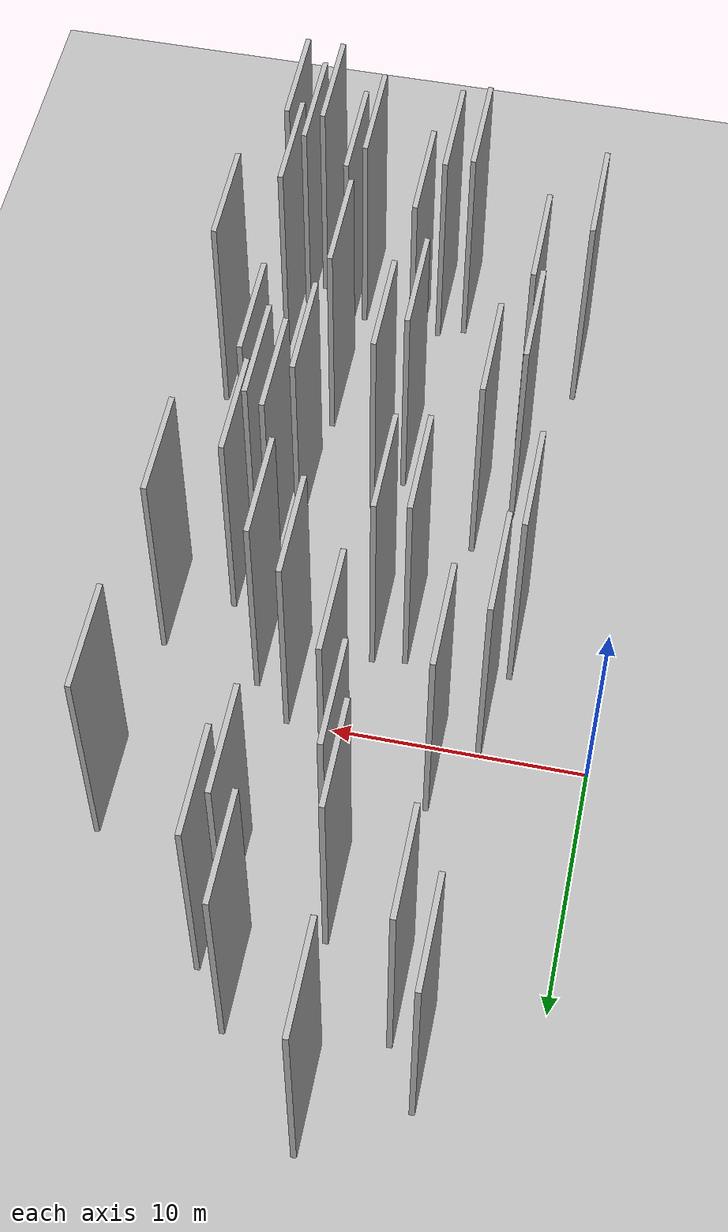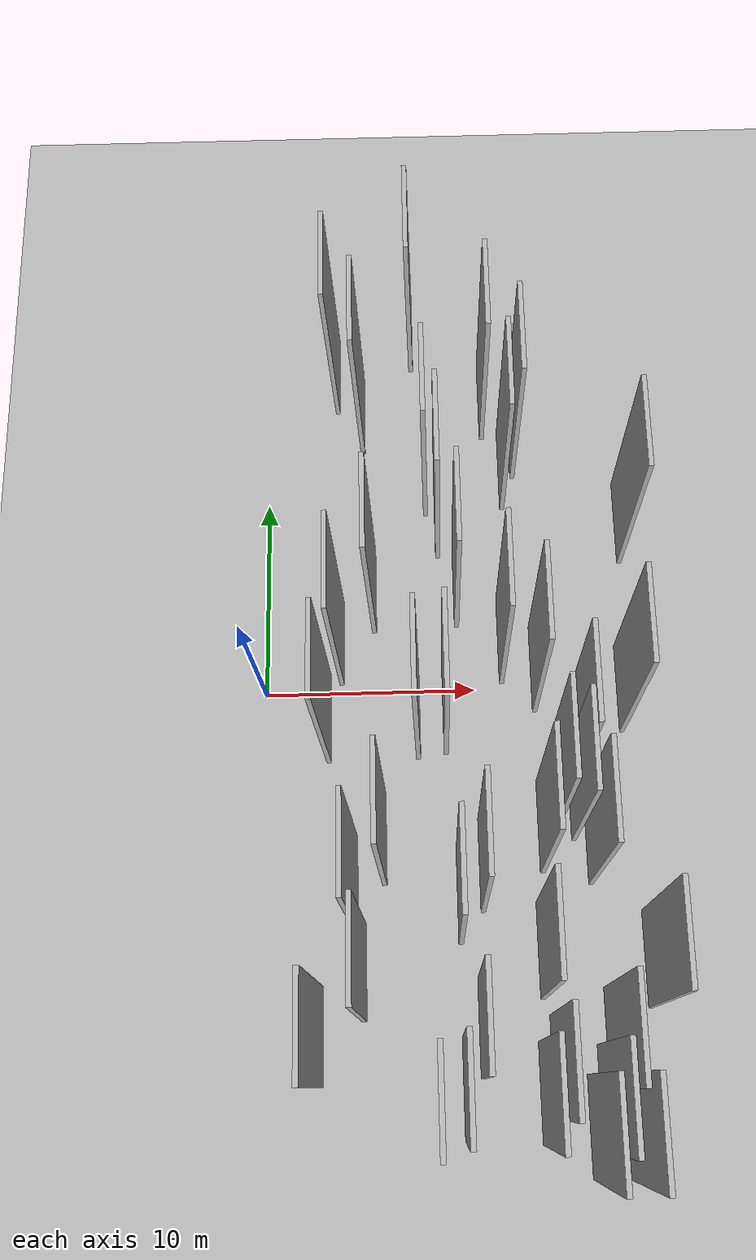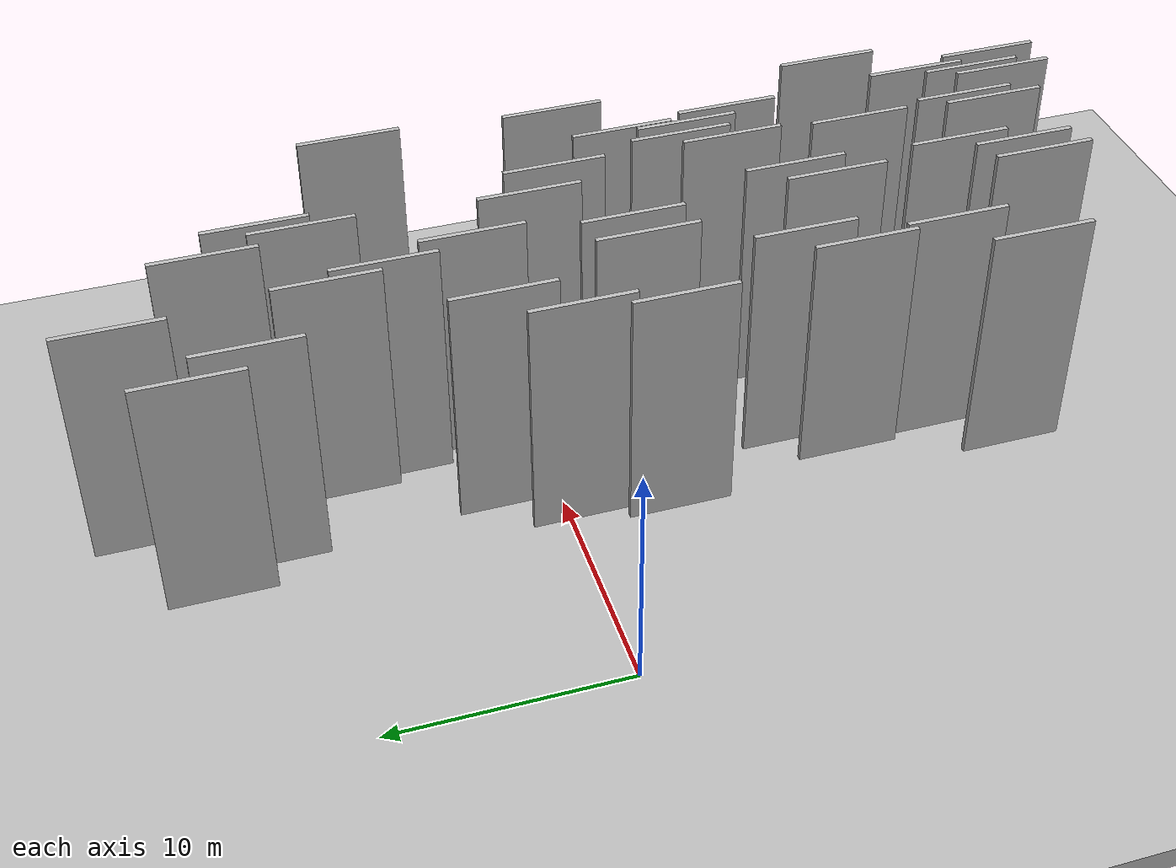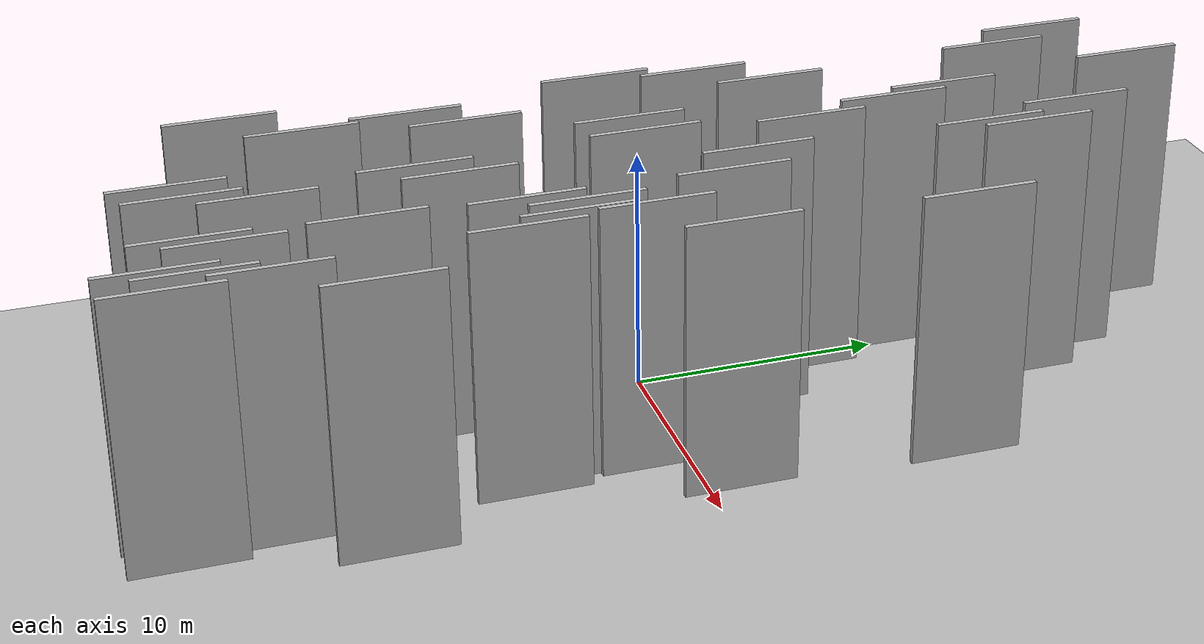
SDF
<?xml version="1.0" encoding="utf-8"?>

<sdf version="1.6">

   <world name="default">

      <gui fullscreen="0">

         <camera name="user_camera">

            <pose>-15 0 4.57585 0 0 0</pose>

            <view_controller>orbit</view_controller>

         </camera>

      </gui>

      <scene>

         <sky>

           <clouds>

             <speed>12</speed>

           </clouds>

         </sky>

         <ambient>0.4 0.4 0.4 1</ambient>

         <background>0.7 0.7 0.7 1</background>

         <shadows>1</shadows>

      </scene>

      <gravity>0 0 -9.8066</gravity>

      <magnetic_field>6e-06 2.3e-05 -4.2e-05</magnetic_field>

      <physics default="0" name="default_physics" type="ode">

         <ode>

            <solver>

               <type>quick</type>

               <iters>10</iters>

               <sor>1.0</sor>

               <use_dynamic_moi_rescaling>0</use_dynamic_moi_rescaling>

            </solver>

            <constraints>

               <cfm>0</cfm>

               <erp>0.2</erp>

               <contact_max_correcting_vel>100</contact_max_correcting_vel>

               <contact_surface_layer>0.001</contact_surface_layer>

            </constraints>

         </ode>

         <max_step_size>0.004</max_step_size>

         <real_time_factor>1</real_time_factor>

         <real_time_update_rate>250</real_time_update_rate>

      </physics>

      <light name="sun" type="directional">

         <cast_shadows>1</cast_shadows>

         <pose>0 0 10 0 0 0</pose>

         <diffuse>0.8 0.8 0.8 1</diffuse>

         <specular>0.2 0.2 0.2 1</specular>

         <attenuation>

            <range>1000</range>

            <constant>0.9</constant>

            <linear>0.01</linear>

            <quadratic>0.001</quadratic>

         </attenuation>

         <direction>-0.5 0.1 -0.9</direction>

      </light>

      <include>

         <name>ground_plane_1</name>

         <uri>model://HANNAS_ground_plane</uri>

         <pose>0 0 0  0 0 0</pose>

      </include>

      <include>

         <name>ground_plane_2</name>

         <uri>model://HANNAS_ground_plane</uri>

         <pose>100 0 0  0 0 0</pose>

      </include>

      <model name="HANNAS_wall_1">

         <static>1</static>

         <pose frame="">14.1114 -3.7937 5.0 0.000000 0.000000 1.570796</pose>

         <link name="link">

            <pose frame="">0 0 5.00 0 0 0</pose>

            <collision name="collision">

               <geometry>

                  <box>

                     <size>4.00 0.2 10.00</size>

                  </box>

               </geometry>

               <max_contacts>10</max_contacts>

               <surface>

                  <contact>

                     <ode/>

                  </contact>

                  <bounce/>

                  <friction>

                     <torsional>

                        <ode/>

                     </torsional>

                     <ode/>

                  </friction>

               </surface>

            </collision>

            <visual name="visual">

               <cast_shadows>0</cast_shadows>

               <geometry>

                  <box>

                     <size>4.00 0.2 10.00</size>

                  </box>

               </geometry>

               <material>

                  <script>

                     <uri>model://HANNAS_wall/materials/scripts</uri>

                     <uri>model://HANNAS_wall/materials/textures</uri>

                     <name>vrc/HANNAS_wall</name>

                  </script>

               </material>

            </visual>

            <self_collide>0</self_collide>

            <enable_wind>0</enable_wind>

            <kinematic>0</kinematic>

         </link>

      </model>

      <model name="HANNAS_wall_2">

         <static>1</static>

         <pose frame="">4.8286 -13.6177 5.0 0.000000 0.000000 1.570796</pose>

         <link name="link">

            <pose frame="">0 0 5.00 0 0 0</pose>

            <collision name="collision">

               <geometry>

                  <box>

                     <size>4.00 0.2 10.00</size>

                  </box>

               </geometry>

               <max_contacts>10</max_contacts>

               <surface>

                  <contact>

                     <ode/>

                  </contact>

                  <bounce/>

                  <friction>

                     <torsional>

                        <ode/>

                     </torsional>

                     <ode/>

                  </friction>

               </surface>

            </collision>

            <visual name="visual">

               <cast_shadows>0</cast_shadows>

               <geometry>

                  <box>

                     <size>4.00 0.2 10.00</size>

                  </box>

               </geometry>

               <material>

                  <script>

                     <uri>model://HANNAS_wall/materials/scripts</uri>

                     <uri>model://HANNAS_wall/materials/textures</uri>

                     <name>vrc/HANNAS_wall</name>

                  </script>

               </material>

            </visual>

            <self_collide>0</self_collide>

            <enable_wind>0</enable_wind>

            <kinematic>0</kinematic>

         </link>

      </model>

      <model name="HANNAS_wall_3">

         <static>1</static>

         <pose frame="">14.4330 -18.7778 5.0 0.000000 0.000000 1.570796</pose>

         <link name="link">

            <pose frame="">0 0 5.00 0 0 0</pose>

            <collision name="collision">

               <geometry>

                  <box>

                     <size>4.00 0.2 10.00</size>

                  </box>

               </geometry>

               <max_contacts>10</max_contacts>

               <surface>

                  <contact>

                     <ode/>

                  </contact>

                  <bounce/>

                  <friction>

                     <torsional>

                        <ode/>

                     </torsional>

                     <ode/>

                  </friction>

               </surface>

            </collision>

            <visual name="visual">

               <cast_shadows>0</cast_shadows>

               <geometry>

                  <box>

                     <size>4.00 0.2 10.00</size>

                  </box>

               </geometry>

               <material>

                  <script>

                     <uri>model://HANNAS_wall/materials/scripts</uri>

                     <uri>model://HANNAS_wall/materials/textures</uri>

                     <name>vrc/HANNAS_wall</name>

                  </script>

               </material>

            </visual>

            <self_collide>0</self_collide>

            <enable_wind>0</enable_wind>

            <kinematic>0</kinematic>

         </link>

      </model>

      <model name="HANNAS_wall_4">

         <static>1</static>

         <pose frame="">10.6159 12.9399 5.0 0.000000 0.000000 1.570796</pose>

         <link name="link">

            <pose frame="">0 0 5.00 0 0 0</pose>

            <collision name="collision">

               <geometry>

                  <box>

                     <size>4.00 0.2 10.00</size>

                  </box>

               </geometry>

               <max_contacts>10</max_contacts>

               <surface>

                  <contact>

                     <ode/>

                  </contact>

                  <bounce/>

                  <friction>

                     <torsional>

                        <ode/>

                     </torsional>

                     <ode/>

                  </friction>

               </surface>

            </collision>

            <visual name="visual">

               <cast_shadows>0</cast_shadows>

               <geometry>

                  <box>

                     <size>4.00 0.2 10.00</size>

                  </box>

               </geometry>

               <material>

                  <script>

                     <uri>model://HANNAS_wall/materials/scripts</uri>

                     <uri>model://HANNAS_wall/materials/textures</uri>

                     <name>vrc/HANNAS_wall</name>

                  </script>

               </material>

            </visual>

            <self_collide>0</self_collide>

            <enable_wind>0</enable_wind>

            <kinematic>0</kinematic>

         </link>

      </model>

      <model name="HANNAS_wall_5">

         <static>1</static>

         <pose frame="">16.2776 -1.5893 5.0 0.000000 0.000000 1.570796</pose>

         <link name="link">

            <pose frame="">0 0 5.00 0 0 0</pose>

            <collision name="collision">

               <geometry>

                  <box>

                     <size>4.00 0.2 10.00</size>

                  </box>

               </geometry>

               <max_contacts>10</max_contacts>

               <surface>

                  <contact>

                     <ode/>

                  </contact>

                  <bounce/>

                  <friction>

                     <torsional>

                        <ode/>

                     </torsional>

                     <ode/>

                  </friction>

               </surface>

            </collision>

            <visual name="visual">

               <cast_shadows>0</cast_shadows>

               <geometry>

                  <box>

                     <size>4.00 0.2 10.00</size>

                  </box>

               </geometry>

               <material>

                  <script>

                     <uri>model://HANNAS_wall/materials/scripts</uri>

                     <uri>model://HANNAS_wall/materials/textures</uri>

                     <name>vrc/HANNAS_wall</name>

                  </script>

               </material>

            </visual>

            <self_collide>0</self_collide>

            <enable_wind>0</enable_wind>

            <kinematic>0</kinematic>

         </link>

      </model>

      <model name="HANNAS_wall_6">

         <static>1</static>

         <pose frame="">3.9730 0.8960 5.0 0.000000 0.000000 1.570796</pose>

         <link name="link">

            <pose frame="">0 0 5.00 0 0 0</pose>

            <collision name="collision">

               <geometry>

                  <box>

                     <size>4.00 0.2 10.00</size>

                  </box>

               </geometry>

               <max_contacts>10</max_contacts>

               <surface>

                  <contact>

                     <ode/>

                  </contact>

                  <bounce/>

                  <friction>

                     <torsional>

                        <ode/>

                     </torsional>

                     <ode/>

                  </friction>

               </surface>

            </collision>

            <visual name="visual">

               <cast_shadows>0</cast_shadows>

               <geometry>

                  <box>

                     <size>4.00 0.2 10.00</size>

                  </box>

               </geometry>

               <material>

                  <script>

                     <uri>model://HANNAS_wall/materials/scripts</uri>

                     <uri>model://HANNAS_wall/materials/textures</uri>

                     <name>vrc/HANNAS_wall</name>

                  </script>

               </material>

            </visual>

            <self_collide>0</self_collide>

            <enable_wind>0</enable_wind>

            <kinematic>0</kinematic>

         </link>

      </model>

      <model name="HANNAS_wall_7">

         <static>1</static>

         <pose frame="">5.7420 -8.0515 5.0 0.000000 0.000000 1.570796</pose>

         <link name="link">

            <pose frame="">0 0 5.00 0 0 0</pose>

            <collision name="collision">

               <geometry>

                  <box>

                     <size>4.00 0.2 10.00</size>

                  </box>

               </geometry>

               <max_contacts>10</max_contacts>

               <surface>

                  <contact>

                     <ode/>

                  </contact>

                  <bounce/>

                  <friction>

                     <torsional>

                        <ode/>

                     </torsional>

                     <ode/>

                  </friction>

               </surface>

            </collision>

            <visual name="visual">

               <cast_shadows>0</cast_shadows>

               <geometry>

                  <box>

                     <size>4.00 0.2 10.00</size>

                  </box>

               </geometry>

               <material>

                  <script>

                     <uri>model://HANNAS_wall/materials/scripts</uri>

                     <uri>model://HANNAS_wall/materials/textures</uri>

                     <name>vrc/HANNAS_wall</name>

                  </script>

               </material>

            </visual>

            <self_collide>0</self_collide>

            <enable_wind>0</enable_wind>

            <kinematic>0</kinematic>

         </link>

      </model>

      <model name="HANNAS_wall_8">

         <static>1</static>

         <pose frame="">16.6600 -13.3874 5.0 0.000000 0.000000 1.570796</pose>

         <link name="link">

            <pose frame="">0 0 5.00 0 0 0</pose>

            <collision name="collision">

               <geometry>

                  <box>

                     <size>4.00 0.2 10.00</size>

                  </box>

               </geometry>

               <max_contacts>10</max_contacts>

               <surface>

                  <contact>

                     <ode/>

                  </contact>

                  <bounce/>

                  <friction>

                     <torsional>

                        <ode/>

                     </torsional>

                     <ode/>

                  </friction>

               </surface>

            </collision>

            <visual name="visual">

               <cast_shadows>0</cast_shadows>

               <geometry>

                  <box>

                     <size>4.00 0.2 10.00</size>

                  </box>

               </geometry>

               <material>

                  <script>

                     <uri>model://HANNAS_wall/materials/scripts</uri>

                     <uri>model://HANNAS_wall/materials/textures</uri>

                     <name>vrc/HANNAS_wall</name>

                  </script>

               </material>

            </visual>

            <self_collide>0</self_collide>

            <enable_wind>0</enable_wind>

            <kinematic>0</kinematic>

         </link>

      </model>

      <model name="HANNAS_wall_9">

         <static>1</static>

         <pose frame="">13.8829 -6.3449 5.0 0.000000 0.000000 1.570796</pose>

         <link name="link">

            <pose frame="">0 0 5.00 0 0 0</pose>

            <collision name="collision">

               <geometry>

                  <box>

                     <size>4.00 0.2 10.00</size>

                  </box>

               </geometry>

               <max_contacts>10</max_contacts>

               <surface>

                  <contact>

                     <ode/>

                  </contact>

                  <bounce/>

                  <friction>

                     <torsional>

                        <ode/>

                     </torsional>

                     <ode/>

                  </friction>

               </surface>

            </collision>

            <visual name="visual">

               <cast_shadows>0</cast_shadows>

               <geometry>

                  <box>

                     <size>4.00 0.2 10.00</size>

                  </box>

               </geometry>

               <material>

                  <script>

                     <uri>model://HANNAS_wall/materials/scripts</uri>

                     <uri>model://HANNAS_wall/materials/textures</uri>

                     <name>vrc/HANNAS_wall</name>

                  </script>

               </material>

            </visual>

            <self_collide>0</self_collide>

            <enable_wind>0</enable_wind>

            <kinematic>0</kinematic>

         </link>

      </model>

      <model name="HANNAS_wall_10">

         <static>1</static>

         <pose frame="">9.6374 -15.9905 5.0 0.000000 0.000000 1.570796</pose>

         <link name="link">

            <pose frame="">0 0 5.00 0 0 0</pose>

            <collision name="collision">

               <geometry>

                  <box>

                     <size>4.00 0.2 10.00</size>

                  </box>

               </geometry>

               <max_contacts>10</max_contacts>

               <surface>

                  <contact>

                     <ode/>

                  </contact>

                  <bounce/>

                  <friction>

                     <torsional>

                        <ode/>

                     </torsional>

                     <ode/>

                  </friction>

               </surface>

            </collision>

            <visual name="visual">

               <cast_shadows>0</cast_shadows>

               <geometry>

                  <box>

                     <size>4.00 0.2 10.00</size>

                  </box>

               </geometry>

               <material>

                  <script>

                     <uri>model://HANNAS_wall/materials/scripts</uri>

                     <uri>model://HANNAS_wall/materials/textures</uri>

                     <name>vrc/HANNAS_wall</name>

                  </script>

               </material>

            </visual>

            <self_collide>0</self_collide>

            <enable_wind>0</enable_wind>

            <kinematic>0</kinematic>

         </link>

      </model>

      <model name="HANNAS_wall_11">

         <static>1</static>

         <pose frame="">3.8425 14.4688 5.0 0.000000 0.000000 1.570796</pose>

         <link name="link">

            <pose frame="">0 0 5.00 0 0 0</pose>

            <collision name="collision">

               <geometry>

                  <box>

                     <size>4.00 0.2 10.00</size>

                  </box>

               </geometry>

               <max_contacts>10</max_contacts>

               <surface>

                  <contact>

                     <ode/>

                  </contact>

                  <bounce/>

                  <friction>

                     <torsional>

                        <ode/>

                     </torsional>

                     <ode/>

                  </friction>

               </surface>

            </collision>

            <visual name="visual">

               <cast_shadows>0</cast_shadows>

               <geometry>

                  <box>

                     <size>4.00 0.2 10.00</size>

                  </box>

               </geometry>

               <material>

                  <script>

                     <uri>model://HANNAS_wall/materials/scripts</uri>

                     <uri>model://HANNAS_wall/materials/textures</uri>

                     <name>vrc/HANNAS_wall</name>

                  </script>

               </material>

            </visual>

            <self_collide>0</self_collide>

            <enable_wind>0</enable_wind>

            <kinematic>0</kinematic>

         </link>

      </model>

      <model name="HANNAS_wall_12">

         <static>1</static>

         <pose frame="">8.5138 -2.3980 5.0 0.000000 0.000000 1.570796</pose>

         <link name="link">

            <pose frame="">0 0 5.00 0 0 0</pose>

            <collision name="collision">

               <geometry>

                  <box>

                     <size>4.00 0.2 10.00</size>

                  </box>

               </geometry>

               <max_contacts>10</max_contacts>

               <surface>

                  <contact>

                     <ode/>

                  </contact>

                  <bounce/>

                  <friction>

                     <torsional>

                        <ode/>

                     </torsional>

                     <ode/>

                  </friction>

               </surface>

            </collision>

            <visual name="visual">

               <cast_shadows>0</cast_shadows>

               <geometry>

                  <box>

                     <size>4.00 0.2 10.00</size>

                  </box>

               </geometry>

               <material>

                  <script>

                     <uri>model://HANNAS_wall/materials/scripts</uri>

                     <uri>model://HANNAS_wall/materials/textures</uri>

                     <name>vrc/HANNAS_wall</name>

                  </script>

               </material>

            </visual>

            <self_collide>0</self_collide>

            <enable_wind>0</enable_wind>

            <kinematic>0</kinematic>

         </link>

      </model>

      <model name="HANNAS_wall_13">

         <static>1</static>

         <pose frame="">7.9102 -18.7060 5.0 0.000000 0.000000 1.570796</pose>

         <link name="link">

            <pose frame="">0 0 5.00 0 0 0</pose>

            <collision name="collision">

               <geometry>

                  <box>

                     <size>4.00 0.2 10.00</size>

                  </box>

               </geometry>

               <max_contacts>10</max_contacts>

               <surface>

                  <contact>

                     <ode/>

                  </contact>

                  <bounce/>

                  <friction>

                     <torsional>

                        <ode/>

                     </torsional>

                     <ode/>

                  </friction>

               </surface>

            </collision>

            <visual name="visual">

               <cast_shadows>0</cast_shadows>

               <geometry>

                  <box>

                     <size>4.00 0.2 10.00</size>

                  </box>

               </geometry>

               <material>

                  <script>

                     <uri>model://HANNAS_wall/materials/scripts</uri>

                     <uri>model://HANNAS_wall/materials/textures</uri>

                     <name>vrc/HANNAS_wall</name>

                  </script>

               </material>

            </visual>

            <self_collide>0</self_collide>

            <enable_wind>0</enable_wind>

            <kinematic>0</kinematic>

         </link>

      </model>

      <model name="HANNAS_wall_14">

         <static>1</static>

         <pose frame="">13.1579 -5.8604 5.0 0.000000 0.000000 1.570796</pose>

         <link name="link">

            <pose frame="">0 0 5.00 0 0 0</pose>

            <collision name="collision">

               <geometry>

                  <box>

                     <size>4.00 0.2 10.00</size>

                  </box>

               </geometry>

               <max_contacts>10</max_contacts>

               <surface>

                  <contact>

                     <ode/>

                  </contact>

                  <bounce/>

                  <friction>

                     <torsional>

                        <ode/>

                     </torsional>

                     <ode/>

                  </friction>

               </surface>

            </collision>

            <visual name="visual">

               <cast_shadows>0</cast_shadows>

               <geometry>

                  <box>

                     <size>4.00 0.2 10.00</size>

                  </box>

               </geometry>

               <material>

                  <script>

                     <uri>model://HANNAS_wall/materials/scripts</uri>

                     <uri>model://HANNAS_wall/materials/textures</uri>

                     <name>vrc/HANNAS_wall</name>

                  </script>

               </material>

            </visual>

            <self_collide>0</self_collide>

            <enable_wind>0</enable_wind>

            <kinematic>0</kinematic>

         </link>

      </model>

      <model name="HANNAS_wall_15">

         <static>1</static>

         <pose frame="">11.9748 10.8636 5.0 0.000000 0.000000 1.570796</pose>

         <link name="link">

            <pose frame="">0 0 5.00 0 0 0</pose>

            <collision name="collision">

               <geometry>

                  <box>

                     <size>4.00 0.2 10.00</size>

                  </box>

               </geometry>

               <max_contacts>10</max_contacts>

               <surface>

                  <contact>

                     <ode/>

                  </contact>

                  <bounce/>

                  <friction>

                     <torsional>

                        <ode/>

                     </torsional>

                     <ode/>

                  </friction>

               </surface>

            </collision>

            <visual name="visual">

               <cast_shadows>0</cast_shadows>

               <geometry>

                  <box>

                     <size>4.00 0.2 10.00</size>

                  </box>

               </geometry>

               <material>

                  <script>

                     <uri>model://HANNAS_wall/materials/scripts</uri>

                     <uri>model://HANNAS_wall/materials/textures</uri>

                     <name>vrc/HANNAS_wall</name>

                  </script>

               </material>

            </visual>

            <self_collide>0</self_collide>

            <enable_wind>0</enable_wind>

            <kinematic>0</kinematic>

         </link>

      </model>

      <model name="HANNAS_wall_16">

         <static>1</static>

         <pose frame="">12.4791 -0.5651 5.0 0.000000 0.000000 1.570796</pose>

         <link name="link">

            <pose frame="">0 0 5.00 0 0 0</pose>

            <collision name="collision">

               <geometry>

                  <box>

                     <size>4.00 0.2 10.00</size>

                  </box>

               </geometry>

               <max_contacts>10</max_contacts>

               <surface>

                  <contact>

                     <ode/>

                  </contact>

                  <bounce/>

                  <friction>

                     <torsional>

                        <ode/>

                     </torsional>

                     <ode/>

                  </friction>

               </surface>

            </collision>

            <visual name="visual">

               <cast_shadows>0</cast_shadows>

               <geometry>

                  <box>

                     <size>4.00 0.2 10.00</size>

                  </box>

               </geometry>

               <material>

                  <script>

                     <uri>model://HANNAS_wall/materials/scripts</uri>

                     <uri>model://HANNAS_wall/materials/textures</uri>

                     <name>vrc/HANNAS_wall</name>

                  </script>

               </material>

            </visual>

            <self_collide>0</self_collide>

            <enable_wind>0</enable_wind>

            <kinematic>0</kinematic>

         </link>

      </model>

      <model name="HANNAS_wall_17">

         <static>1</static>

         <pose frame="">3.3967 -2.6597 5.0 0.000000 0.000000 1.570796</pose>

         <link name="link">

            <pose frame="">0 0 5.00 0 0 0</pose>

            <collision name="collision">

               <geometry>

                  <box>

                     <size>4.00 0.2 10.00</size>

                  </box>

               </geometry>

               <max_contacts>10</max_contacts>

               <surface>

                  <contact>

                     <ode/>

                  </contact>

                  <bounce/>

                  <friction>

                     <torsional>

                        <ode/>

                     </torsional>

                     <ode/>

                  </friction>

               </surface>

            </collision>

            <visual name="visual">

               <cast_shadows>0</cast_shadows>

               <geometry>

                  <box>

                     <size>4.00 0.2 10.00</size>

                  </box>

               </geometry>

               <material>

                  <script>

                     <uri>model://HANNAS_wall/materials/scripts</uri>

                     <uri>model://HANNAS_wall/materials/textures</uri>

                     <name>vrc/HANNAS_wall</name>

                  </script>

               </material>

            </visual>

            <self_collide>0</self_collide>

            <enable_wind>0</enable_wind>

            <kinematic>0</kinematic>

         </link>

      </model>

      <model name="HANNAS_wall_18">

         <static>1</static>

         <pose frame="">5.0087 12.3215 5.0 0.000000 0.000000 1.570796</pose>

         <link name="link">

            <pose frame="">0 0 5.00 0 0 0</pose>

            <collision name="collision">

               <geometry>

                  <box>

                     <size>4.00 0.2 10.00</size>

                  </box>

               </geometry>

               <max_contacts>10</max_contacts>

               <surface>

                  <contact>

                     <ode/>

                  </contact>

                  <bounce/>

                  <friction>

                     <torsional>

                        <ode/>

                     </torsional>

                     <ode/>

                  </friction>

               </surface>

            </collision>

            <visual name="visual">

               <cast_shadows>0</cast_shadows>

               <geometry>

                  <box>

                     <size>4.00 0.2 10.00</size>

                  </box>

               </geometry>

               <material>

                  <script>

                     <uri>model://HANNAS_wall/materials/scripts</uri>

                     <uri>model://HANNAS_wall/materials/textures</uri>

                     <name>vrc/HANNAS_wall</name>

                  </script>

               </material>

            </visual>

            <self_collide>0</self_collide>

            <enable_wind>0</enable_wind>

            <kinematic>0</kinematic>

         </link>

      </model>

      <model name="HANNAS_wall_19">

         <static>1</static>

         <pose frame="">3.0246 -16.1511 5.0 0.000000 0.000000 1.570796</pose>

         <link name="link">

            <pose frame="">0 0 5.00 0 0 0</pose>

            <collision name="collision">

               <geometry>

                  <box>

                     <size>4.00 0.2 10.00</size>

                  </box>

               </geometry>

               <max_contacts>10</max_contacts>

               <surface>

                  <contact>

                     <ode/>

                  </contact>

                  <bounce/>

                  <friction>

                     <torsional>

                        <ode/>

                     </torsional>

                     <ode/>

                  </friction>

               </surface>

            </collision>

            <visual name="visual">

               <cast_shadows>0</cast_shadows>

               <geometry>

                  <box>

                     <size>4.00 0.2 10.00</size>

                  </box>

               </geometry>

               <material>

                  <script>

                     <uri>model://HANNAS_wall/materials/scripts</uri>

                     <uri>model://HANNAS_wall/materials/textures</uri>

                     <name>vrc/HANNAS_wall</name>

                  </script>

               </material>

            </visual>

            <self_collide>0</self_collide>

            <enable_wind>0</enable_wind>

            <kinematic>0</kinematic>

         </link>

      </model>

      <model name="HANNAS_wall_20">

         <static>1</static>

         <pose frame="">8.9035 -10.5954 5.0 0.000000 0.000000 1.570796</pose>

         <link name="link">

            <pose frame="">0 0 5.00 0 0 0</pose>

            <collision name="collision">

               <geometry>

                  <box>

                     <size>4.00 0.2 10.00</size>

                  </box>

               </geometry>

               <max_contacts>10</max_contacts>

               <surface>

                  <contact>

                     <ode/>

                  </contact>

                  <bounce/>

                  <friction>

                     <torsional>

                        <ode/>

                     </torsional>

                     <ode/>

                  </friction>

               </surface>

            </collision>

            <visual name="visual">

               <cast_shadows>0</cast_shadows>

               <geometry>

                  <box>

                     <size>4.00 0.2 10.00</size>

                  </box>

               </geometry>

               <material>

                  <script>

                     <uri>model://HANNAS_wall/materials/scripts</uri>

                     <uri>model://HANNAS_wall/materials/textures</uri>

                     <name>vrc/HANNAS_wall</name>

                  </script>

               </material>

            </visual>

            <self_collide>0</self_collide>

            <enable_wind>0</enable_wind>

            <kinematic>0</kinematic>

         </link>

      </model>

      <model name="HANNAS_wall_21">

         <static>1</static>

         <pose frame="">9.8785 -9.2996 5.0 0.000000 0.000000 1.570796</pose>

         <link name="link">

            <pose frame="">0 0 5.00 0 0 0</pose>

            <collision name="collision">

               <geometry>

                  <box>

                     <size>4.00 0.2 10.00</size>

                  </box>

               </geometry>

               <max_contacts>10</max_contacts>

               <surface>

                  <contact>

                     <ode/>

                  </contact>

                  <bounce/>

                  <friction>

                     <torsional>

                        <ode/>

                     </torsional>

                     <ode/>

                  </friction>

               </surface>

            </collision>

            <visual name="visual">

               <cast_shadows>0</cast_shadows>

               <geometry>

                  <box>

                     <size>4.00 0.2 10.00</size>

                  </box>

               </geometry>

               <material>

                  <script>

                     <uri>model://HANNAS_wall/materials/scripts</uri>

                     <uri>model://HANNAS_wall/materials/textures</uri>

                     <name>vrc/HANNAS_wall</name>

                  </script>

               </material>

            </visual>

            <self_collide>0</self_collide>

            <enable_wind>0</enable_wind>

            <kinematic>0</kinematic>

         </link>

      </model>

      <model name="HANNAS_wall_22">

         <static>1</static>

         <pose frame="">11.0679 0.8018 5.0 0.000000 0.000000 1.570796</pose>

         <link name="link">

            <pose frame="">0 0 5.00 0 0 0</pose>

            <collision name="collision">

               <geometry>

                  <box>

                     <size>4.00 0.2 10.00</size>

                  </box>

               </geometry>

               <max_contacts>10</max_contacts>

               <surface>

                  <contact>

                     <ode/>

                  </contact>

                  <bounce/>

                  <friction>

                     <torsional>

                        <ode/>

                     </torsional>

                     <ode/>

                  </friction>

               </surface>

            </collision>

            <visual name="visual">

               <cast_shadows>0</cast_shadows>

               <geometry>

                  <box>

                     <size>4.00 0.2 10.00</size>

                  </box>

               </geometry>

               <material>

                  <script>

                     <uri>model://HANNAS_wall/materials/scripts</uri>

                     <uri>model://HANNAS_wall/materials/textures</uri>

                     <name>vrc/HANNAS_wall</name>

                  </script>

               </material>

            </visual>

            <self_collide>0</self_collide>

            <enable_wind>0</enable_wind>

            <kinematic>0</kinematic>

         </link>

      </model>

      <model name="HANNAS_wall_23">

         <static>1</static>

         <pose frame="">16.7042 6.4296 5.0 0.000000 0.000000 1.570796</pose>

         <link name="link">

            <pose frame="">0 0 5.00 0 0 0</pose>

            <collision name="collision">

               <geometry>

                  <box>

                     <size>4.00 0.2 10.00</size>

                  </box>

               </geometry>

               <max_contacts>10</max_contacts>

               <surface>

                  <contact>

                     <ode/>

                  </contact>

                  <bounce/>

                  <friction>

                     <torsional>

                        <ode/>

                     </torsional>

                     <ode/>

                  </friction>

               </surface>

            </collision>

            <visual name="visual">

               <cast_shadows>0</cast_shadows>

               <geometry>

                  <box>

                     <size>4.00 0.2 10.00</size>

                  </box>

               </geometry>

               <material>

                  <script>

                     <uri>model://HANNAS_wall/materials/scripts</uri>

                     <uri>model://HANNAS_wall/materials/textures</uri>

                     <name>vrc/HANNAS_wall</name>

                  </script>

               </material>

            </visual>

            <self_collide>0</self_collide>

            <enable_wind>0</enable_wind>

            <kinematic>0</kinematic>

         </link>

      </model>

      <model name="HANNAS_wall_24">

         <static>1</static>

         <pose frame="">14.8474 -16.5143 5.0 0.000000 0.000000 1.570796</pose>

         <link name="link">

            <pose frame="">0 0 5.00 0 0 0</pose>

            <collision name="collision">

               <geometry>

                  <box>

                     <size>4.00 0.2 10.00</size>

                  </box>

               </geometry>

               <max_contacts>10</max_contacts>

               <surface>

                  <contact>

                     <ode/>

                  </contact>

                  <bounce/>

                  <friction>

                     <torsional>

                        <ode/>

                     </torsional>

                     <ode/>

                  </friction>

               </surface>

            </collision>

            <visual name="visual">

               <cast_shadows>0</cast_shadows>

               <geometry>

                  <box>

                     <size>4.00 0.2 10.00</size>

                  </box>

               </geometry>

               <material>

                  <script>

                     <uri>model://HANNAS_wall/materials/scripts</uri>

                     <uri>model://HANNAS_wall/materials/textures</uri>

                     <name>vrc/HANNAS_wall</name>

                  </script>

               </material>

            </visual>

            <self_collide>0</self_collide>

            <enable_wind>0</enable_wind>

            <kinematic>0</kinematic>

         </link>

      </model>

      <model name="HANNAS_wall_25">

         <static>1</static>

         <pose frame="">8.9203 -18.3437 5.0 0.000000 0.000000 1.570796</pose>

         <link name="link">

            <pose frame="">0 0 5.00 0 0 0</pose>

            <collision name="collision">

               <geometry>

                  <box>

                     <size>4.00 0.2 10.00</size>

                  </box>

               </geometry>

               <max_contacts>10</max_contacts>

               <surface>

                  <contact>

                     <ode/>

                  </contact>

                  <bounce/>

                  <friction>

                     <torsional>

                        <ode/>

                     </torsional>

                     <ode/>

                  </friction>

               </surface>

            </collision>

            <visual name="visual">

               <cast_shadows>0</cast_shadows>

               <geometry>

                  <box>

                     <size>4.00 0.2 10.00</size>

                  </box>

               </geometry>

               <material>

                  <script>

                     <uri>model://HANNAS_wall/materials/scripts</uri>

                     <uri>model://HANNAS_wall/materials/textures</uri>

                     <name>vrc/HANNAS_wall</name>

                  </script>

               </material>

            </visual>

            <self_collide>0</self_collide>

            <enable_wind>0</enable_wind>

            <kinematic>0</kinematic>

         </link>

      </model>

      <model name="HANNAS_wall_26">

         <static>1</static>

         <pose frame="">11.4298 9.2579 5.0 0.000000 0.000000 1.570796</pose>

         <link name="link">

            <pose frame="">0 0 5.00 0 0 0</pose>

            <collision name="collision">

               <geometry>

                  <box>

                     <size>4.00 0.2 10.00</size>

                  </box>

               </geometry>

               <max_contacts>10</max_contacts>

               <surface>

                  <contact>

                     <ode/>

                  </contact>

                  <bounce/>

                  <friction>

                     <torsional>

                        <ode/>

                     </torsional>

                     <ode/>

                  </friction>

               </surface>

            </collision>

            <visual name="visual">

               <cast_shadows>0</cast_shadows>

               <geometry>

                  <box>

                     <size>4.00 0.2 10.00</size>

                  </box>

               </geometry>

               <material>

                  <script>

                     <uri>model://HANNAS_wall/materials/scripts</uri>

                     <uri>model://HANNAS_wall/materials/textures</uri>

                     <name>vrc/HANNAS_wall</name>

                  </script>

               </material>

            </visual>

            <self_collide>0</self_collide>

            <enable_wind>0</enable_wind>

            <kinematic>0</kinematic>

         </link>

      </model>

      <model name="HANNAS_wall_27">

         <static>1</static>

         <pose frame="">12.5568 -17.5587 5.0 0.000000 0.000000 1.570796</pose>

         <link name="link">

            <pose frame="">0 0 5.00 0 0 0</pose>

            <collision name="collision">

               <geometry>

                  <box>

                     <size>4.00 0.2 10.00</size>

                  </box>

               </geometry>

               <max_contacts>10</max_contacts>

               <surface>

                  <contact>

                     <ode/>

                  </contact>

                  <bounce/>

                  <friction>

                     <torsional>

                        <ode/>

                     </torsional>

                     <ode/>

                  </friction>

               </surface>

            </collision>

            <visual name="visual">

               <cast_shadows>0</cast_shadows>

               <geometry>

                  <box>

                     <size>4.00 0.2 10.00</size>

                  </box>

               </geometry>

               <material>

                  <script>

                     <uri>model://HANNAS_wall/materials/scripts</uri>

                     <uri>model://HANNAS_wall/materials/textures</uri>

                     <name>vrc/HANNAS_wall</name>

                  </script>

               </material>

            </visual>

            <self_collide>0</self_collide>

            <enable_wind>0</enable_wind>

            <kinematic>0</kinematic>

         </link>

      </model>

      <model name="HANNAS_wall_28">

         <static>1</static>

         <pose frame="">12.4710 -7.7170 5.0 0.000000 0.000000 1.570796</pose>

         <link name="link">

            <pose frame="">0 0 5.00 0 0 0</pose>

            <collision name="collision">

               <geometry>

                  <box>

                     <size>4.00 0.2 10.00</size>

                  </box>

               </geometry>

               <max_contacts>10</max_contacts>

               <surface>

                  <contact>

                     <ode/>

                  </contact>

                  <bounce/>

                  <friction>

                     <torsional>

                        <ode/>

                     </torsional>

                     <ode/>

                  </friction>

               </surface>

            </collision>

            <visual name="visual">

               <cast_shadows>0</cast_shadows>

               <geometry>

                  <box>

                     <size>4.00 0.2 10.00</size>

                  </box>

               </geometry>

               <material>

                  <script>

                     <uri>model://HANNAS_wall/materials/scripts</uri>

                     <uri>model://HANNAS_wall/materials/textures</uri>

                     <name>vrc/HANNAS_wall</name>

                  </script>

               </material>

            </visual>

            <self_collide>0</self_collide>

            <enable_wind>0</enable_wind>

            <kinematic>0</kinematic>

         </link>

      </model>

      <model name="HANNAS_wall_29">

         <static>1</static>

         <pose frame="">7.8761 9.0600 5.0 0.000000 0.000000 1.570796</pose>

         <link name="link">

            <pose frame="">0 0 5.00 0 0 0</pose>

            <collision name="collision">

               <geometry>

                  <box>

                     <size>4.00 0.2 10.00</size>

                  </box>

               </geometry>

               <max_contacts>10</max_contacts>

               <surface>

                  <contact>

                     <ode/>

                  </contact>

                  <bounce/>

                  <friction>

                     <torsional>

                        <ode/>

                     </torsional>

                     <ode/>

                  </friction>

               </surface>

            </collision>

            <visual name="visual">

               <cast_shadows>0</cast_shadows>

               <geometry>

                  <box>

                     <size>4.00 0.2 10.00</size>

                  </box>

               </geometry>

               <material>

                  <script>

                     <uri>model://HANNAS_wall/materials/scripts</uri>

                     <uri>model://HANNAS_wall/materials/textures</uri>

                     <name>vrc/HANNAS_wall</name>

                  </script>

               </material>

            </visual>

            <self_collide>0</self_collide>

            <enable_wind>0</enable_wind>

            <kinematic>0</kinematic>

         </link>

      </model>

      <model name="HANNAS_wall_30">

         <static>1</static>

         <pose frame="">4.4993 -9.9000 5.0 0.000000 0.000000 1.570796</pose>

         <link name="link">

            <pose frame="">0 0 5.00 0 0 0</pose>

            <collision name="collision">

               <geometry>

                  <box>

                     <size>4.00 0.2 10.00</size>

                  </box>

               </geometry>

               <max_contacts>10</max_contacts>

               <surface>

                  <contact>

                     <ode/>

                  </contact>

                  <bounce/>

                  <friction>

                     <torsional>

                        <ode/>

                     </torsional>

                     <ode/>

                  </friction>

               </surface>

            </collision>

            <visual name="visual">

               <cast_shadows>0</cast_shadows>

               <geometry>

                  <box>

                     <size>4.00 0.2 10.00</size>

                  </box>

               </geometry>

               <material>

                  <script>

                     <uri>model://HANNAS_wall/materials/scripts</uri>

                     <uri>model://HANNAS_wall/materials/textures</uri>

                     <name>vrc/HANNAS_wall</name>

                  </script>

               </material>

            </visual>

            <self_collide>0</self_collide>

            <enable_wind>0</enable_wind>

            <kinematic>0</kinematic>

         </link>

      </model>

      <model name="HANNAS_wall_31">

         <static>1</static>

         <pose frame="">9.1450 3.4872 5.0 0.000000 0.000000 1.570796</pose>

         <link name="link">

            <pose frame="">0 0 5.00 0 0 0</pose>

            <collision name="collision">

               <geometry>

                  <box>

                     <size>4.00 0.2 10.00</size>

                  </box>

               </geometry>

               <max_contacts>10</max_contacts>

               <surface>

                  <contact>

                     <ode/>

                  </contact>

                  <bounce/>

                  <friction>

                     <torsional>

                        <ode/>

                     </torsional>

                     <ode/>

                  </friction>

               </surface>

            </collision>

            <visual name="visual">

               <cast_shadows>0</cast_shadows>

               <geometry>

                  <box>

                     <size>4.00 0.2 10.00</size>

                  </box>

               </geometry>

               <material>

                  <script>

                     <uri>model://HANNAS_wall/materials/scripts</uri>

                     <uri>model://HANNAS_wall/materials/textures</uri>

                     <name>vrc/HANNAS_wall</name>

                  </script>

               </material>

            </visual>

            <self_collide>0</self_collide>

            <enable_wind>0</enable_wind>

            <kinematic>0</kinematic>

         </link>

      </model>

      <model name="HANNAS_wall_32">

         <static>1</static>

         <pose frame="">7.2981 -2.5812 5.0 0.000000 0.000000 1.570796</pose>

         <link name="link">

            <pose frame="">0 0 5.00 0 0 0</pose>

            <collision name="collision">

               <geometry>

                  <box>

                     <size>4.00 0.2 10.00</size>

                  </box>

               </geometry>

               <max_contacts>10</max_contacts>

               <surface>

                  <contact>

                     <ode/>

                  </contact>

                  <bounce/>

                  <friction>

                     <torsional>

                        <ode/>

                     </torsional>

                     <ode/>

                  </friction>

               </surface>

            </collision>

            <visual name="visual">

               <cast_shadows>0</cast_shadows>

               <geometry>

                  <box>

                     <size>4.00 0.2 10.00</size>

                  </box>

               </geometry>

               <material>

                  <script>

                     <uri>model://HANNAS_wall/materials/scripts</uri>

                     <uri>model://HANNAS_wall/materials/textures</uri>

                     <name>vrc/HANNAS_wall</name>

                  </script>

               </material>

            </visual>

            <self_collide>0</self_collide>

            <enable_wind>0</enable_wind>

            <kinematic>0</kinematic>

         </link>

      </model>

      <model name="HANNAS_wall_33">

         <static>1</static>

         <pose frame="">7.3447 16.6387 5.0 0.000000 0.000000 1.570796</pose>

         <link name="link">

            <pose frame="">0 0 5.00 0 0 0</pose>

            <collision name="collision">

               <geometry>

                  <box>

                     <size>4.00 0.2 10.00</size>

                  </box>

               </geometry>

               <max_contacts>10</max_contacts>

               <surface>

                  <contact>

                     <ode/>

                  </contact>

                  <bounce/>

                  <friction>

                     <torsional>

                        <ode/>

                     </torsional>

                     <ode/>

                  </friction>

               </surface>

            </collision>

            <visual name="visual">

               <cast_shadows>0</cast_shadows>

               <geometry>

                  <box>

                     <size>4.00 0.2 10.00</size>

                  </box>

               </geometry>

               <material>

                  <script>

                     <uri>model://HANNAS_wall/materials/scripts</uri>

                     <uri>model://HANNAS_wall/materials/textures</uri>

                     <name>vrc/HANNAS_wall</name>

                  </script>

               </material>

            </visual>

            <self_collide>0</self_collide>

            <enable_wind>0</enable_wind>

            <kinematic>0</kinematic>

         </link>

      </model>

      <model name="HANNAS_wall_34">

         <static>1</static>

         <pose frame="">12.2179 -12.9237 5.0 0.000000 0.000000 1.570796</pose>

         <link name="link">

            <pose frame="">0 0 5.00 0 0 0</pose>

            <collision name="collision">

               <geometry>

                  <box>

                     <size>4.00 0.2 10.00</size>

                  </box>

               </geometry>

               <max_contacts>10</max_contacts>

               <surface>

                  <contact>

                     <ode/>

                  </contact>

                  <bounce/>

                  <friction>

                     <torsional>

                        <ode/>

                     </torsional>

                     <ode/>

                  </friction>

               </surface>

            </collision>

            <visual name="visual">

               <cast_shadows>0</cast_shadows>

               <geometry>

                  <box>

                     <size>4.00 0.2 10.00</size>

                  </box>

               </geometry>

               <material>

                  <script>

                     <uri>model://HANNAS_wall/materials/scripts</uri>

                     <uri>model://HANNAS_wall/materials/textures</uri>

                     <name>vrc/HANNAS_wall</name>

                  </script>

               </material>

            </visual>

            <self_collide>0</self_collide>

            <enable_wind>0</enable_wind>

            <kinematic>0</kinematic>

         </link>

      </model>

      <model name="HANNAS_wall_35">

         <static>1</static>

         <pose frame="">12.0315 -18.5883 5.0 0.000000 0.000000 1.570796</pose>

         <link name="link">

            <pose frame="">0 0 5.00 0 0 0</pose>

            <collision name="collision">

               <geometry>

                  <box>

                     <size>4.00 0.2 10.00</size>

                  </box>

               </geometry>

               <max_contacts>10</max_contacts>

               <surface>

                  <contact>

                     <ode/>

                  </contact>

                  <bounce/>

                  <friction>

                     <torsional>

                        <ode/>

                     </torsional>

                     <ode/>

                  </friction>

               </surface>

            </collision>

            <visual name="visual">

               <cast_shadows>0</cast_shadows>

               <geometry>

                  <box>

                     <size>4.00 0.2 10.00</size>

                  </box>

               </geometry>

               <material>

                  <script>

                     <uri>model://HANNAS_wall/materials/scripts</uri>

                     <uri>model://HANNAS_wall/materials/textures</uri>

                     <name>vrc/HANNAS_wall</name>

                  </script>

               </material>

            </visual>

            <self_collide>0</self_collide>

            <enable_wind>0</enable_wind>

            <kinematic>0</kinematic>

         </link>

      </model>

      <model name="HANNAS_wall_36">

         <static>1</static>

         <pose frame="">13.9565 -19.9278 5.0 0.000000 0.000000 1.570796</pose>

         <link name="link">

            <pose frame="">0 0 5.00 0 0 0</pose>

            <collision name="collision">

               <geometry>

                  <box>

                     <size>4.00 0.2 10.00</size>

                  </box>

               </geometry>

               <max_contacts>10</max_contacts>

               <surface>

                  <contact>

                     <ode/>

                  </contact>

                  <bounce/>

                  <friction>

                     <torsional>

                        <ode/>

                     </torsional>

                     <ode/>

                  </friction>

               </surface>

            </collision>

            <visual name="visual">

               <cast_shadows>0</cast_shadows>

               <geometry>

                  <box>

                     <size>4.00 0.2 10.00</size>

                  </box>

               </geometry>

               <material>

                  <script>

                     <uri>model://HANNAS_wall/materials/scripts</uri>

                     <uri>model://HANNAS_wall/materials/textures</uri>

                     <name>vrc/HANNAS_wall</name>

                  </script>

               </material>

            </visual>

            <self_collide>0</self_collide>

            <enable_wind>0</enable_wind>

            <kinematic>0</kinematic>

         </link>

      </model>

      <model name="HANNAS_wall_37">

         <static>1</static>

         <pose frame="">8.3832 6.8987 5.0 0.000000 0.000000 1.570796</pose>

         <link name="link">

            <pose frame="">0 0 5.00 0 0 0</pose>

            <collision name="collision">

               <geometry>

                  <box>

                     <size>4.00 0.2 10.00</size>

                  </box>

               </geometry>

               <max_contacts>10</max_contacts>

               <surface>

                  <contact>

                     <ode/>

                  </contact>

                  <bounce/>

                  <friction>

                     <torsional>

                        <ode/>

                     </torsional>

                     <ode/>

                  </friction>

               </surface>

            </collision>

            <visual name="visual">

               <cast_shadows>0</cast_shadows>

               <geometry>

                  <box>

                     <size>4.00 0.2 10.00</size>

                  </box>

               </geometry>

               <material>

                  <script>

                     <uri>model://HANNAS_wall/materials/scripts</uri>

                     <uri>model://HANNAS_wall/materials/textures</uri>

                     <name>vrc/HANNAS_wall</name>

                  </script>

               </material>

            </visual>

            <self_collide>0</self_collide>

            <enable_wind>0</enable_wind>

            <kinematic>0</kinematic>

         </link>

      </model>

      <model name="HANNAS_wall_38">

         <static>1</static>

         <pose frame="">5.4413 3.3285 5.0 0.000000 0.000000 1.570796</pose>

         <link name="link">

            <pose frame="">0 0 5.00 0 0 0</pose>

            <collision name="collision">

               <geometry>

                  <box>

                     <size>4.00 0.2 10.00</size>

                  </box>

               </geometry>

               <max_contacts>10</max_contacts>

               <surface>

                  <contact>

                     <ode/>

                  </contact>

                  <bounce/>

                  <friction>

                     <torsional>

                        <ode/>

                     </torsional>

                     <ode/>

                  </friction>

               </surface>

            </collision>

            <visual name="visual">

               <cast_shadows>0</cast_shadows>

               <geometry>

                  <box>

                     <size>4.00 0.2 10.00</size>

                  </box>

               </geometry>

               <material>

                  <script>

                     <uri>model://HANNAS_wall/materials/scripts</uri>

                     <uri>model://HANNAS_wall/materials/textures</uri>

                     <name>vrc/HANNAS_wall</name>

                  </script>

               </material>

            </visual>

            <self_collide>0</self_collide>

            <enable_wind>0</enable_wind>

            <kinematic>0</kinematic>

         </link>

      </model>

      <model name="HANNAS_wall_39">

         <static>1</static>

         <pose frame="">15.3505 -19.9263 5.0 0.000000 0.000000 1.570796</pose>

         <link name="link">

            <pose frame="">0 0 5.00 0 0 0</pose>

            <collision name="collision">

               <geometry>

                  <box>

                     <size>4.00 0.2 10.00</size>

                  </box>

               </geometry>

               <max_contacts>10</max_contacts>

               <surface>

                  <contact>

                     <ode/>

                  </contact>

                  <bounce/>

                  <friction>

                     <torsional>

                        <ode/>

                     </torsional>

                     <ode/>

                  </friction>

               </surface>

            </collision>

            <visual name="visual">

               <cast_shadows>0</cast_shadows>

               <geometry>

                  <box>

                     <size>4.00 0.2 10.00</size>

                  </box>

               </geometry>

               <material>

                  <script>

                     <uri>model://HANNAS_wall/materials/scripts</uri>

                     <uri>model://HANNAS_wall/materials/textures</uri>

                     <name>vrc/HANNAS_wall</name>

                  </script>

               </material>

            </visual>

            <self_collide>0</self_collide>

            <enable_wind>0</enable_wind>

            <kinematic>0</kinematic>

         </link>

      </model>

      <model name="HANNAS_wall_40">

         <static>1</static>

         <pose frame="">14.4997 -8.2356 5.0 0.000000 0.000000 1.570796</pose>

         <link name="link">

            <pose frame="">0 0 5.00 0 0 0</pose>

            <collision name="collision">

               <geometry>

                  <box>

                     <size>4.00 0.2 10.00</size>

                  </box>

               </geometry>

               <max_contacts>10</max_contacts>

               <surface>

                  <contact>

                     <ode/>

                  </contact>

                  <bounce/>

                  <friction>

                     <torsional>

                        <ode/>

                     </torsional>

                     <ode/>

                  </friction>

               </surface>

            </collision>

            <visual name="visual">

               <cast_shadows>0</cast_shadows>

               <geometry>

                  <box>

                     <size>4.00 0.2 10.00</size>

                  </box>

               </geometry>

               <material>

                  <script>

                     <uri>model://HANNAS_wall/materials/scripts</uri>

                     <uri>model://HANNAS_wall/materials/textures</uri>

                     <name>vrc/HANNAS_wall</name>

                  </script>

               </material>

            </visual>

            <self_collide>0</self_collide>

            <enable_wind>0</enable_wind>

            <kinematic>0</kinematic>

         </link>

      </model>

   </world>

</sdf>
